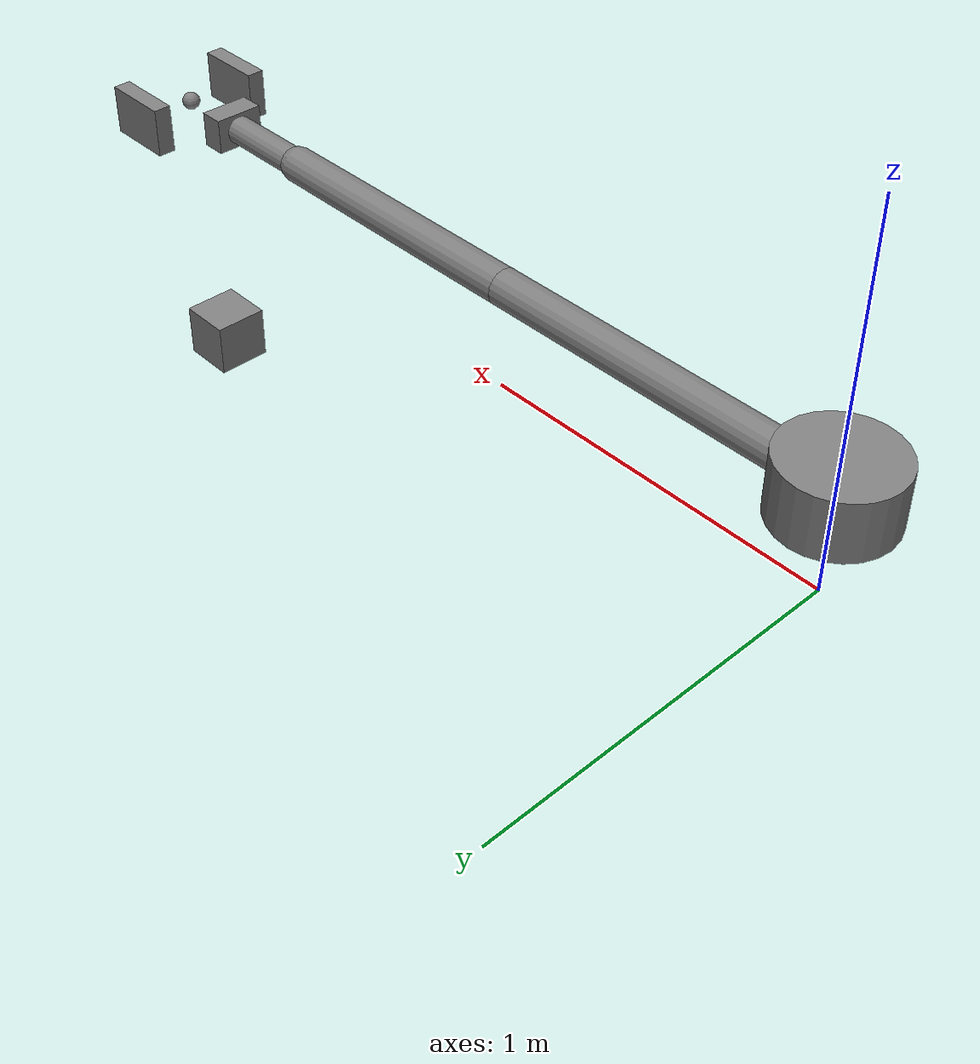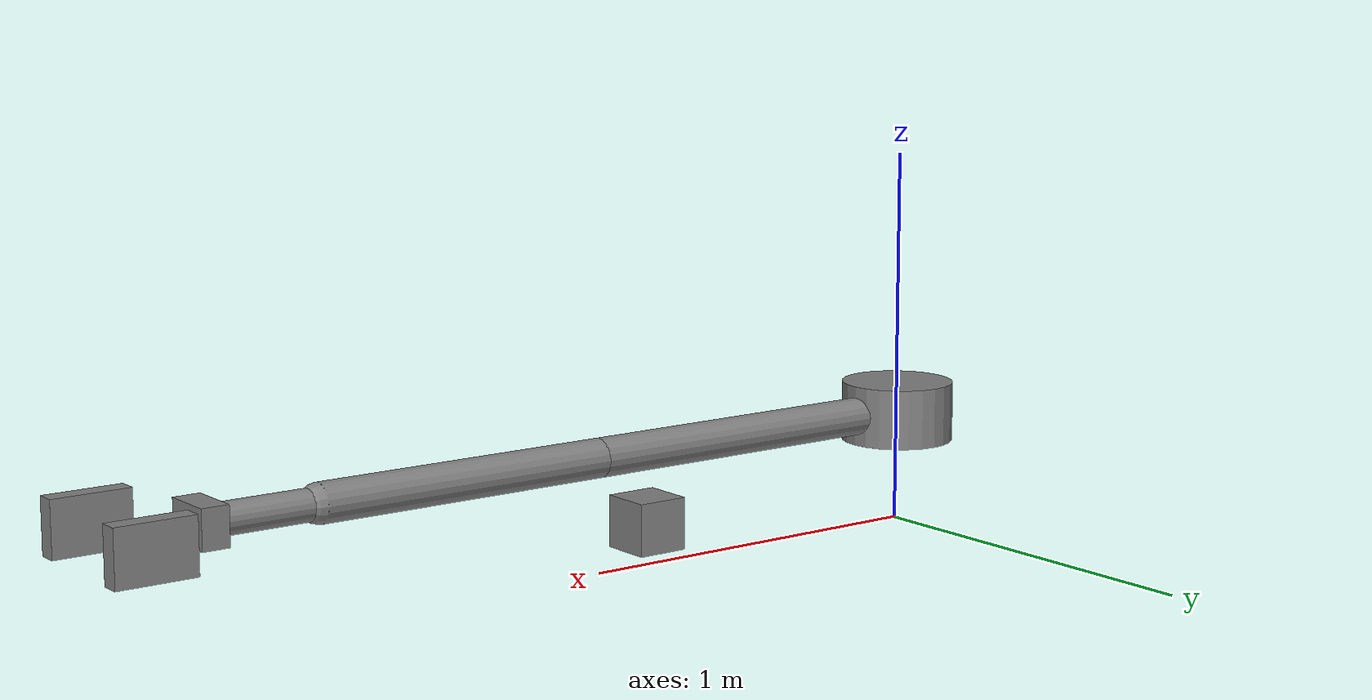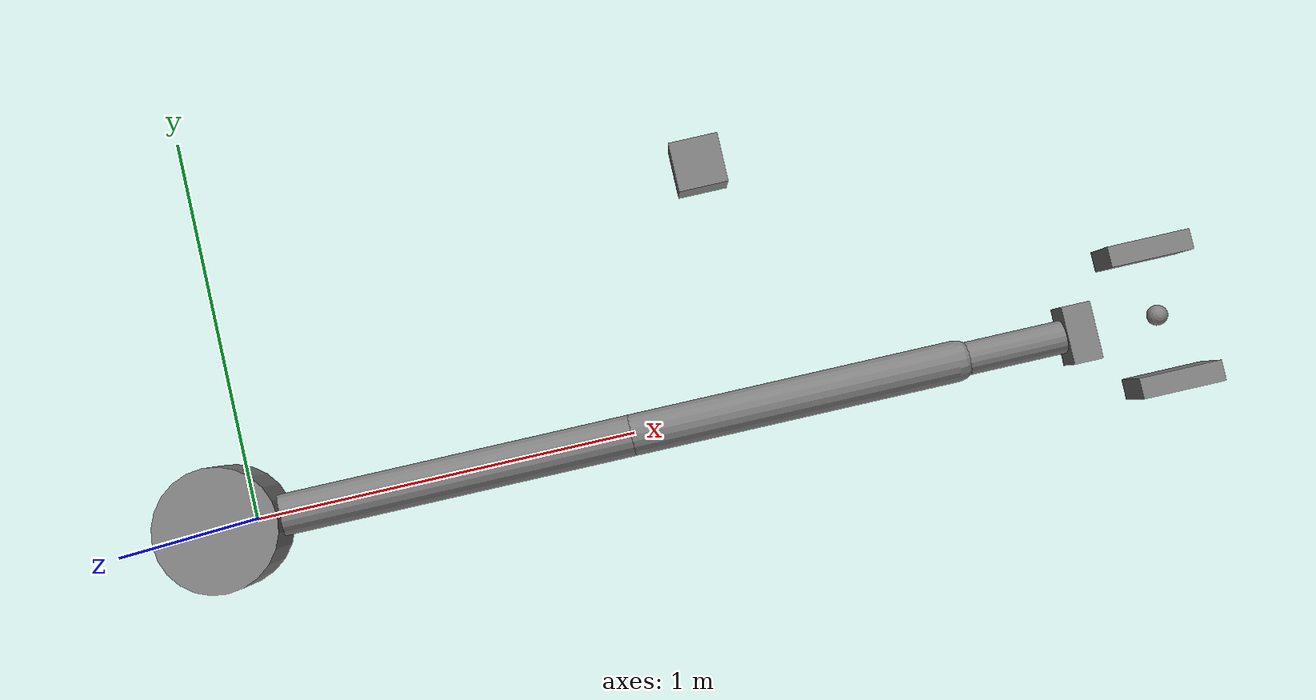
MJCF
<mujoco model="three_link_gripper">

    <option
        timestep="0.002"
        gravity="0 0 0"
    />

    <worldbody>

        <!-- ===============================
             Base
        ================================ -->

        <body
            name="base"
            pos="0 0 0.30"
        >

            <geom
                name="base_geom"
                type="cylinder"
                size="0.15 0.08"
            />

            <!-- ===========================
                 Link 1
            ============================ -->

            <body
                name="link1"
                pos="0 0 0"
            >

                <joint
                    name="joint1"
                    type="hinge"
                    axis="0 0 1"
                    damping="0.2"
                />

                <geom
                    name="link1_geom"
                    type="capsule"
                    fromto="0 0 0 1.0 0 0"
                    size="0.05"
                />

                <!-- =======================
                     Link 2
                ======================== -->

                <body
                    name="link2"
                    pos="1.0 0 0"
                >

                    <joint
                        name="joint2"
                        type="hinge"
                        axis="0 0 1"
                        damping="0.2"
                    />

                    <geom
                        name="link2_geom"
                        type="capsule"
                        fromto="0 0 0 0.8 0 0"
                        size="0.05"
                    />

                    <!-- ===================
                         Link 3
                    ==================== -->

                    <body
                        name="link3"
                        pos="0.8 0 0"
                    >

                        <joint
                            name="joint3"
                            type="hinge"
                            axis="0 0 1"
                            damping="0.2"
                        />

                        <geom
                            name="link3_geom"
                            type="capsule"
                            fromto="0 0 0 0.30 0 0"
                            size="0.04"
                        />

                        <!-- =================
                             Gripper base
                        ================== -->

                        <body
                            name="gripper_base"
                            pos="0.30 0 0"
                        >

                            <geom
                                name="gripper_base_geom"
                                type="box"
                                size="0.035 0.07 0.05"
                            />

                            <!-- =================
                                 Left finger
                            ================== -->

                            <body
                                name="left_finger"
                                pos="0.20 0.16 0"
                            >

                                <joint
                                    name="left_finger_joint"
                                    type="slide"
                                    axis="0 -1 0"
                                    range="0 0.12"
                                    damping="1.0"
                                />

                                <geom
                                    name="left_finger_geom"
                                    type="box"
                                    size="0.10 0.025 0.07"
                                    friction="2.0 0.1 0.01"
                                />

                            </body>

                            <!-- =================
                                 Right finger
                            ================== -->

                            <body
                                name="right_finger"
                                pos="0.20 -0.16 0"
                            >

                                <joint
                                    name="right_finger_joint"
                                    type="slide"
                                    axis="0 1 0"
                                    range="0 0.12"
                                    damping="1.0"
                                />

                                <geom
                                    name="right_finger_geom"
                                    type="box"
                                    size="0.10 0.025 0.07"
                                    friction="2.0 0.1 0.01"
                                />

                            </body>

                            <!-- 真正的抓取中心 -->

                            <site
                                name="grasp_site"
                                pos="0.20 0 0"
                                type="sphere"
                                size="0.025"
                            />

                        </body>

                    </body>

                </body>

            </body>

        </body>

        <!-- ===============================
             Cube
        ================================ -->

        <body
            name="cube"
            pos="1.30 0.60 0.30"
        >

            <joint
                name="cube_x"
                type="slide"
                axis="1 0 0"
                damping="0.2"
            />

            <joint
                name="cube_y"
                type="slide"
                axis="0 1 0"
                damping="0.2"
            />

            <joint
                name="cube_yaw"
                type="hinge"
                axis="0 0 1"
                damping="0.1"
            />

            <geom
                name="cube_geom"
                type="box"
                size="0.06 0.06 0.06"
                mass="0.15"
                friction="2.0 0.1 0.01"
            />

        </body>

        <!-- grasp target visualization -->

        <site
            name="object_site"
            pos="1.30 0.60 0.30"
            type="sphere"
            size="0.035"
        />

    </worldbody>

    <!-- ===============================
         Contact exclusions
    ================================ -->

    <contact>

        <exclude
            body1="base"
            body2="link1"
        />

        <exclude
            body1="link1"
            body2="link2"
        />

        <exclude
            body1="link2"
            body2="link3"
        />

        <exclude
            body1="link3"
            body2="gripper_base"
        />

    </contact>

    <!-- ===============================
         Actuators
    ================================ -->

    <actuator>

        <motor
            name="motor1"
            joint="joint1"
            gear="1"
            ctrllimited="true"
            ctrlrange="-20 20"
        />

        <motor
            name="motor2"
            joint="joint2"
            gear="1"
            ctrllimited="true"
            ctrlrange="-20 20"
        />

        <motor
            name="motor3"
            joint="joint3"
            gear="1"
            ctrllimited="true"
            ctrlrange="-10 10"
        />

        <position
            name="left_gripper_act"
            joint="left_finger_joint"
            kp="150"
            ctrllimited="true"
            ctrlrange="0 0.08"
        />

        <position
            name="right_gripper_act"
            joint="right_finger_joint"
            kp="150"
            ctrllimited="true"
            ctrlrange="0 0.08"
        />

    </actuator>

</mujoco>
